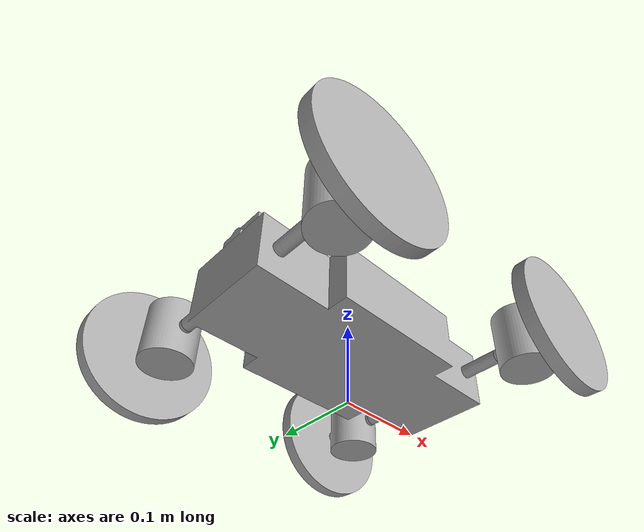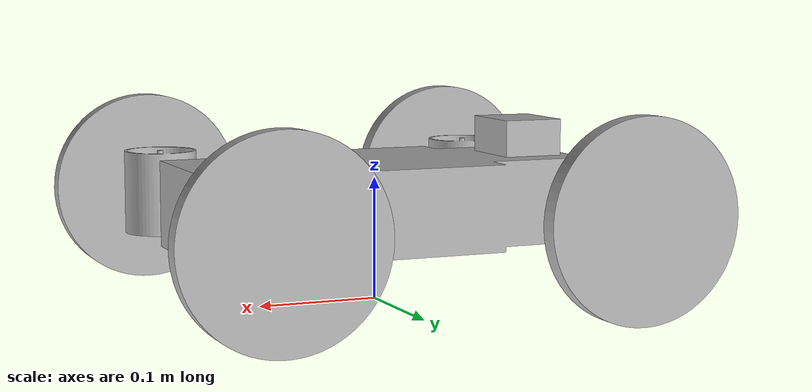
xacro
<?xml version="1.0" ?>
<robot name="tilt_rotor_drone" xmlns:xacro="http://www.ros.org/wiki/xacro">

<xacro:include filename="$(find tilt_rotor_drone_description)/urdf/materials.xacro" />
<xacro:include filename="$(find tilt_rotor_drone_description)/urdf/tilt_rotor_drone.trans" />
<xacro:include filename="$(find tilt_rotor_drone_description)/urdf/tilt_rotor_drone.gazebo" />
<link name="base_link">
  <inertial>
    <origin xyz="0.0 0.0 0.08" rpy="0 0 0"/>
    <mass value="4.486183340738176"/>
    <inertia ixx="0.009485" iyy="0.037554" izz="0.043416" ixy="0.0" iyz="-0.0" ixz="0.0"/>
  </inertial>
  <visual>
    <origin xyz="0 0 0" rpy="0 0 0"/>
    <geometry>
      <mesh filename="file://$(find tilt_rotor_drone_description)/meshes/base_link.stl" scale="0.001 0.001 0.001"/>
    </geometry>
    <material name="silver"/>
  </visual>
  <collision>
    <origin xyz="0 0 0" rpy="0 0 0"/>
    <geometry>
      <mesh filename="file://$(find tilt_rotor_drone_description)/meshes/base_link.stl" scale="0.001 0.001 0.001"/>
    </geometry>
  </collision>
</link>

<link name="camera_1">
  <inertial>
    <origin xyz="0.034658466570421015 1.102165422458351e-14 0.015" rpy="0 0 0"/>
    <mass value="0.16859383382811585"/>
    <inertia ixx="6.3e-05" iyy="4.9e-05" izz="8.6e-05" ixy="0.0" iyz="0.0" ixz="-0.0"/>
  </inertial>
  <visual>
    <origin xyz="0.165 -0.0 -0.115" rpy="0 0 0"/>
    <geometry>
      <mesh filename="file://$(find tilt_rotor_drone_description)/meshes/camera_1.stl" scale="0.001 0.001 0.001"/>
    </geometry>
    <material name="silver"/>
  </visual>
  <collision>
    <origin xyz="0.165 -0.0 -0.115" rpy="0 0 0"/>
    <geometry>
      <mesh filename="file://$(find tilt_rotor_drone_description)/meshes/camera_1.stl" scale="0.001 0.001 0.001"/>
    </geometry>
  </collision>
</link>

<link name="front_right_edf__1">
  <inertial>
    <origin xyz="0.00025059616387235195 0.034914939342453516 -0.014945536013250452" rpy="0 0 0"/>
    <mass value="0.07039346308248161"/>
    <inertia ixx="5e-05" iyy="4.7e-05" izz="4.6e-05" ixy="0.0" iyz="-1e-06" ixz="0.0"/>
  </inertial>
  <visual>
    <origin xyz="0.142989 -0.1 -0.08" rpy="0 0 0"/>
    <geometry>
      <mesh filename="file://$(find tilt_rotor_drone_description)/meshes/front_right_edf__1.stl" scale="0.001 0.001 0.001"/>
    </geometry>
    <material name="silver"/>
  </visual>
  <collision>
    <origin xyz="0.142989 -0.1 -0.08" rpy="0 0 0"/>
    <geometry>
      <mesh filename="file://$(find tilt_rotor_drone_description)/meshes/front_right_edf__1.stl" scale="0.001 0.001 0.001"/>
    </geometry>
  </collision>
</link>

<link name="front_left_edf_1">
  <inertial>
    <origin xyz="0.00025059616387249073 -0.03491493934245349 -0.01494553601325048" rpy="0 0 0"/>
    <mass value="0.07039346308248164"/>
    <inertia ixx="5e-05" iyy="4.7e-05" izz="4.6e-05" ixy="-0.0" iyz="1e-06" ixz="0.0"/>
  </inertial>
  <visual>
    <origin xyz="0.142989 0.1 -0.08" rpy="0 0 0"/>
    <geometry>
      <mesh filename="file://$(find tilt_rotor_drone_description)/meshes/front_left_edf_1.stl" scale="0.001 0.001 0.001"/>
    </geometry>
    <material name="silver"/>
  </visual>
  <collision>
    <origin xyz="0.142989 0.1 -0.08" rpy="0 0 0"/>
    <geometry>
      <mesh filename="file://$(find tilt_rotor_drone_description)/meshes/front_left_edf_1.stl" scale="0.001 0.001 0.001"/>
    </geometry>
  </collision>
</link>

<link name="rear_left_edf__1">
  <inertial>
    <origin xyz="-0.0002505961257860678 -0.03491486069246366 -0.014945587640810665" rpy="0 0 0"/>
    <mass value="0.07039321991755289"/>
    <inertia ixx="5e-05" iyy="4.7e-05" izz="4.6e-05" ixy="0.0" iyz="1e-06" ixz="-0.0"/>
  </inertial>
  <visual>
    <origin xyz="-0.142989 0.1 -0.08" rpy="0 0 0"/>
    <geometry>
      <mesh filename="file://$(find tilt_rotor_drone_description)/meshes/rear_left_edf__1.stl" scale="0.001 0.001 0.001"/>
    </geometry>
    <material name="silver"/>
  </visual>
  <collision>
    <origin xyz="-0.142989 0.1 -0.08" rpy="0 0 0"/>
    <geometry>
      <mesh filename="file://$(find tilt_rotor_drone_description)/meshes/rear_left_edf__1.stl" scale="0.001 0.001 0.001"/>
    </geometry>
  </collision>
</link>

<link name="rear_right_edf__1">
  <inertial>
    <origin xyz="-0.00025059612578604007 0.03491486069246369 -0.014945587640810679" rpy="0 0 0"/>
    <mass value="0.07039321991755285"/>
    <inertia ixx="5e-05" iyy="4.7e-05" izz="4.6e-05" ixy="-0.0" iyz="-1e-06" ixz="-0.0"/>
  </inertial>
  <visual>
    <origin xyz="-0.142989 -0.1 -0.08" rpy="0 0 0"/>
    <geometry>
      <mesh filename="file://$(find tilt_rotor_drone_description)/meshes/rear_right_edf__1.stl" scale="0.001 0.001 0.001"/>
    </geometry>
    <material name="silver"/>
  </visual>
  <collision>
    <origin xyz="-0.142989 -0.1 -0.08" rpy="0 0 0"/>
    <geometry>
      <mesh filename="file://$(find tilt_rotor_drone_description)/meshes/rear_right_edf__1.stl" scale="0.001 0.001 0.001"/>
    </geometry>
  </collision>
</link>

<link name="rear_right_wheel__1">
  <inertial>
    <origin xyz="1.942890293094024e-16 0.007500000000000007 1.942890293094024e-16" rpy="0 0 0"/>
    <mass value="0.28048139211249673"/>
    <inertia ixx="0.000454" iyy="0.000898" izz="0.000454" ixy="0.0" iyz="0.0" ixz="0.0"/>
  </inertial>
  <visual>
    <origin xyz="-0.142989 -0.174 -0.08" rpy="0 0 0"/>
    <geometry>
      <mesh filename="file://$(find tilt_rotor_drone_description)/meshes/rear_right_wheel__1.stl" scale="0.001 0.001 0.001"/>
    </geometry>
    <material name="silver"/>
  </visual>
  <collision>
    <origin xyz="-0.142989 -0.174 -0.08" rpy="0 0 0"/>
    <geometry>
      <mesh filename="file://$(find tilt_rotor_drone_description)/meshes/rear_right_wheel__1.stl" scale="0.001 0.001 0.001"/>
    </geometry>
  </collision>
</link>

<link name="rear_left_wheel__1">
  <inertial>
    <origin xyz="0.0 -0.007499999999999951 1.3877787807814457e-17" rpy="0 0 0"/>
    <mass value="0.2804813921124967"/>
    <inertia ixx="0.000454" iyy="0.000898" izz="0.000454" ixy="0.0" iyz="0.0" ixz="0.0"/>
  </inertial>
  <visual>
    <origin xyz="-0.142989 0.174 -0.08" rpy="0 0 0"/>
    <geometry>
      <mesh filename="file://$(find tilt_rotor_drone_description)/meshes/rear_left_wheel__1.stl" scale="0.001 0.001 0.001"/>
    </geometry>
    <material name="silver"/>
  </visual>
  <collision>
    <origin xyz="-0.142989 0.174 -0.08" rpy="0 0 0"/>
    <geometry>
      <mesh filename="file://$(find tilt_rotor_drone_description)/meshes/rear_left_wheel__1.stl" scale="0.001 0.001 0.001"/>
    </geometry>
  </collision>
</link>

<link name="front_left_wheel_1">
  <inertial>
    <origin xyz="0.0 -0.007500000000000007 5.551115123125783e-17" rpy="0 0 0"/>
    <mass value="0.2804813921124967"/>
    <inertia ixx="0.000454" iyy="0.000898" izz="0.000454" ixy="0.0" iyz="-0.0" ixz="-0.0"/>
  </inertial>
  <visual>
    <origin xyz="0.142989 0.174 -0.08" rpy="0 0 0"/>
    <geometry>
      <mesh filename="file://$(find tilt_rotor_drone_description)/meshes/front_left_wheel_1.stl" scale="0.001 0.001 0.001"/>
    </geometry>
    <material name="silver"/>
  </visual>
  <collision>
    <origin xyz="0.142989 0.174 -0.08" rpy="0 0 0"/>
    <geometry>
      <mesh filename="file://$(find tilt_rotor_drone_description)/meshes/front_left_wheel_1.stl" scale="0.001 0.001 0.001"/>
    </geometry>
  </collision>
</link>

<link name="front_right_wheel__1">
  <inertial>
    <origin xyz="1.942890293094024e-16 0.007500000000000007 1.942890293094024e-16" rpy="0 0 0"/>
    <mass value="0.28048139211249673"/>
    <inertia ixx="0.000454" iyy="0.000898" izz="0.000454" ixy="-0.0" iyz="0.0" ixz="0.0"/>
  </inertial>
  <visual>
    <origin xyz="0.142989 -0.174 -0.08" rpy="0 0 0"/>
    <geometry>
      <mesh filename="file://$(find tilt_rotor_drone_description)/meshes/front_right_wheel__1.stl" scale="0.001 0.001 0.001"/>
    </geometry>
    <material name="silver"/>
  </visual>
  <collision>
    <origin xyz="0.142989 -0.174 -0.08" rpy="0 0 0"/>
    <geometry>
      <mesh filename="file://$(find tilt_rotor_drone_description)/meshes/front_right_wheel__1.stl" scale="0.001 0.001 0.001"/>
    </geometry>
  </collision>
</link>

<joint name="camera_joint" type="fixed">
  <origin xyz="-0.165 0.0 0.115" rpy="0 0 0"/>
  <parent link="base_link"/>
  <child link="camera_1"/>
</joint>

<joint name="front_right_edf_joint" type="fixed">
  <origin xyz="-0.142989 0.1 0.08" rpy="0 0 0"/>
  <parent link="base_link"/>
  <child link="front_right_edf__1"/>
</joint>

<joint name="front_left_edf_joint" type="fixed">
  <origin xyz="-0.142989 -0.1 0.08" rpy="0 0 0"/>
  <parent link="base_link"/>
  <child link="front_left_edf_1"/>
</joint>

<joint name="rear_left_edf_joint" type="fixed">
  <origin xyz="0.142989 -0.1 0.08" rpy="0 0 0"/>
  <parent link="base_link"/>
  <child link="rear_left_edf__1"/>
</joint>

<joint name="rear_right_edf_joint" type="fixed">
  <origin xyz="0.142989 0.1 0.08" rpy="0 0 0"/>
  <parent link="base_link"/>
  <child link="rear_right_edf__1"/>
</joint>

<joint name="rear_right_wheel_joint" type="continuous">
  <origin xyz="0.0 0.074 0.0" rpy="0 0 0"/>
  <parent link="rear_right_edf__1"/>
  <child link="rear_right_wheel__1"/>
  <axis xyz="0.0 1.0 0.0"/>
</joint>

<joint name="rear_left_wheel_joint" type="continuous">
  <origin xyz="0.0 -0.074 0.0" rpy="0 0 0"/>
  <parent link="rear_left_edf__1"/>
  <child link="rear_left_wheel__1"/>
  <axis xyz="-0.0 1.0 0.0"/>
</joint>

<joint name="front_left_wheel_joint" type="continuous">
  <origin xyz="0.0 -0.074 0.0" rpy="0 0 0"/>
  <parent link="front_left_edf_1"/>
  <child link="front_left_wheel_1"/>
  <axis xyz="-0.0 -1.0 0.0"/>
</joint>

<joint name="front_right_wheel_joint" type="continuous">
  <origin xyz="0.0 0.074 0.0" rpy="0 0 0"/>
  <parent link="front_right_edf__1"/>
  <child link="front_right_wheel__1"/>
  <axis xyz="0.0 -1.0 0.0"/>
</joint>

</robot>

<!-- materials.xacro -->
<robot name="tilt_rotor_drone" xmlns:xacro="http://www.ros.org/wiki/xacro" >

<material name="silver">
  <color rgba="0.700 0.700 0.700 1.000"/>
</material>

</robot>

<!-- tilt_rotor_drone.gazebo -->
<robot name="tilt_rotor_drone" xmlns:xacro="http://www.ros.org/wiki/xacro" >

<xacro:property name="body_color" value="Gazebo/Silver" />

<gazebo>
  <plugin name="control" filename="libgazebo_ros_control.so"/>
</gazebo>
<gazebo reference="base_link">
  <material>${body_color}</material>
  <mu1>0.2</mu1>
  <mu2>0.2</mu2>
  <self_collide>true</self_collide>
  <gravity>true</gravity>
</gazebo>

<gazebo reference="camera_1">
  <material>${body_color}</material>
  <mu1>0.2</mu1>
  <mu2>0.2</mu2>
  <self_collide>true</self_collide>
</gazebo>

<gazebo reference="front_right_edf__1">
  <material>${body_color}</material>
  <mu1>0.2</mu1>
  <mu2>0.2</mu2>
  <self_collide>true</self_collide>
</gazebo>

<gazebo reference="front_left_edf_1">
  <material>${body_color}</material>
  <mu1>0.2</mu1>
  <mu2>0.2</mu2>
  <self_collide>true</self_collide>
</gazebo>

<gazebo reference="rear_left_edf__1">
  <material>${body_color}</material>
  <mu1>0.2</mu1>
  <mu2>0.2</mu2>
  <self_collide>true</self_collide>
</gazebo>

<gazebo reference="rear_right_edf__1">
  <material>${body_color}</material>
  <mu1>0.2</mu1>
  <mu2>0.2</mu2>
  <self_collide>true</self_collide>
</gazebo>

<gazebo reference="rear_right_wheel__1">
  <material>${body_color}</material>
  <mu1>0.2</mu1>
  <mu2>0.2</mu2>
  <self_collide>true</self_collide>
</gazebo>

<gazebo reference="rear_left_wheel__1">
  <material>${body_color}</material>
  <mu1>0.2</mu1>
  <mu2>0.2</mu2>
  <self_collide>true</self_collide>
</gazebo>

<gazebo reference="front_left_wheel_1">
  <material>${body_color}</material>
  <mu1>0.2</mu1>
  <mu2>0.2</mu2>
  <self_collide>true</self_collide>
</gazebo>

<gazebo reference="front_right_wheel__1">
  <material>${body_color}</material>
  <mu1>0.2</mu1>
  <mu2>0.2</mu2>
  <self_collide>true</self_collide>
</gazebo>

</robot>
